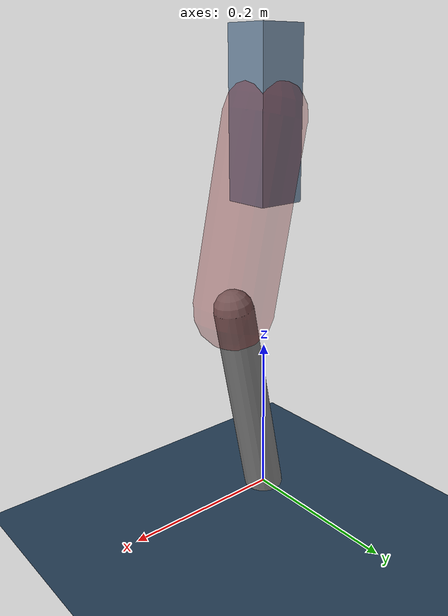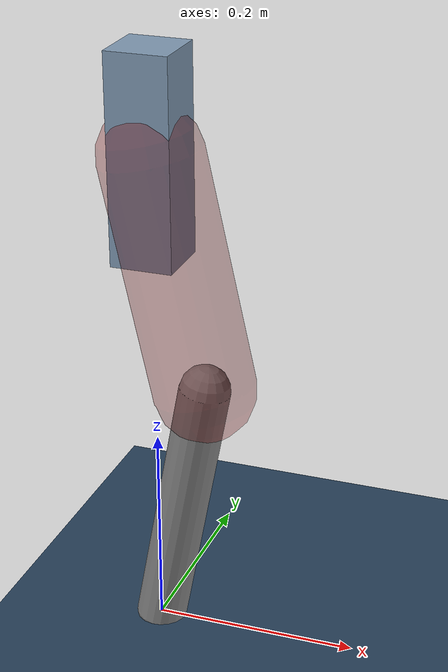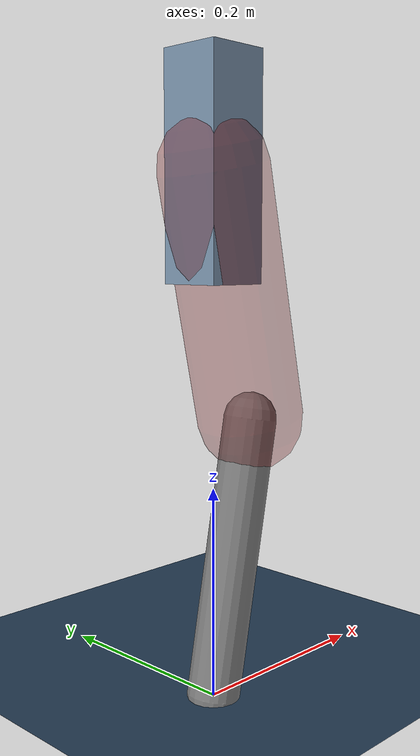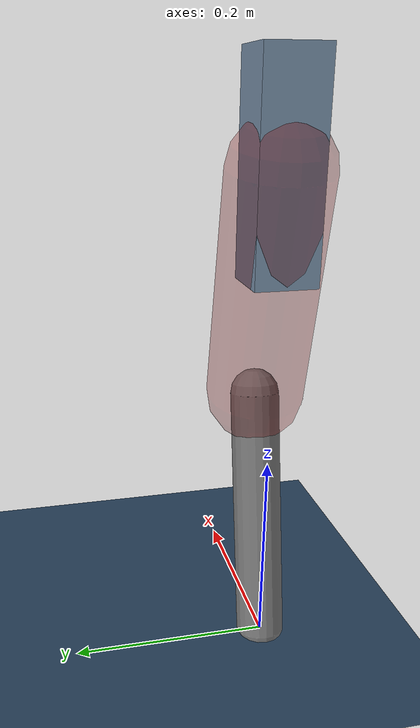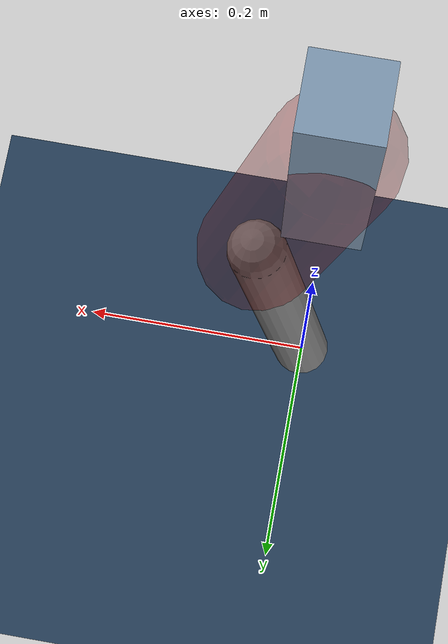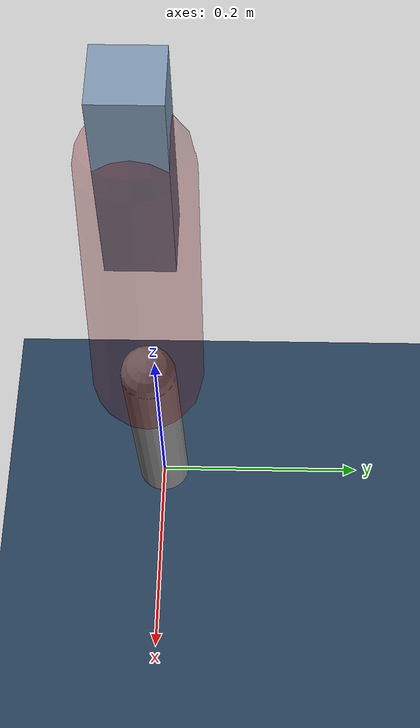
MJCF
<mujoco model="Hopper2D">
	<compiler inertiafromgeom="true" angle="radian" />
	<option timestep="0.001" integrator="implicit" cone="elliptic" solver="Newton" tolerance="1e-10" />

	<default>
		<geom contype="1" conaffinity="1" condim="3" friction="2 0.005 0.0001" solref="0.005 1" />
		<joint limited="true" damping="0.1" />
	</default>

	<asset>
		<texture name="skybox" type="skybox" builtin="gradient" rgb1=".4 .6 .8" rgb2="0 0 0" width="800" height="800" />
		<texture name="grid" type="2d" builtin="checker" rgb1=".1 .2 .3" rgb2=".2 .3 .4" width="300" height="300" mark="edge" markrgb=".2 .3 .4" />
		<material name="ground" texture="grid" texrepeat="1 1" texuniform="true" reflectance="0.1" />
		<material name="leg" rgba="0.5 0.6 0.7 1" />
	</asset>

	<worldbody>

		<geom name="floor" type="plane" size="5 5 0.25" material="ground" />

		<light directional="false" diffuse="0.8 0.8 0.8" specular="0.3 0.3 0.3" pos="0 0 2" dir="0 0 -1" />
		<light mode="targetbodycom" target="base" directional="false" diffuse="0.8 0.8 0.8" specular="0.3 0.3 0.3" pos="0 0 2" dir="0 0 -1" />

		<camera name="fixed" pos="0 -2 1" xyaxes="1 0 0 0 0 1" />
		<camera name="tracking" mode="trackcom" pos="0 -3 1" />

		<body name="root" pos="0 0 0.4858263286717698">
			<joint name="slide_x" type="slide" axis="1 0 0" range="-100 100" />
			<joint name="slide_z" type="slide" axis="0 0 1" range="0 10" />

			<body name="base" pos="0 0 0">
				<geom name="torso" type="box" size="0.03 0.03 0.1" mass="3.4029999999999996" material="leg" />

				<body name="link1" pos="0 0 0" euler="0 1.3556474173824387 0">
					<joint type="hinge" axis="0 -1 0" pos="0 0 0" name="hinge1" limited="true" range="-3.14 3.14" stiffness="0" damping="0.1" />
					<geom name="thigh" type="capsule" fromto="0 0 0 0.2315118766445219 0 0" size="0.05" rgba="0.5 0 0 0.3" mass="0.8088796916113048" />

					<body name="link2" pos="0.2315118766445219 0 0" euler="0 0.40325375447546435 0">
						<joint type="hinge" axis="0 -1 0" pos="0 0 0" name="hinge2" limited="true" range="-3.14 3.14" stiffness="0" damping="0.1" />
						<geom name="shank" type="capsule" fromto="0 0 0 0.26431445202724785 0 0" size="0.025" mass="0.45428300682452305" />

					</body>
				</body>
			</body>
		</body>
	</worldbody>

	<actuator>
		<motor name="torque1" joint="hinge1" ctrlrange="-54.24386788983112 54.24386788983112" ctrllimited="true" gear="1" />
		<motor name="torque2" joint="hinge2" ctrlrange="-153.93246893506955 153.93246893506955" ctrllimited="true" gear="1" />
	</actuator>
</mujoco>
